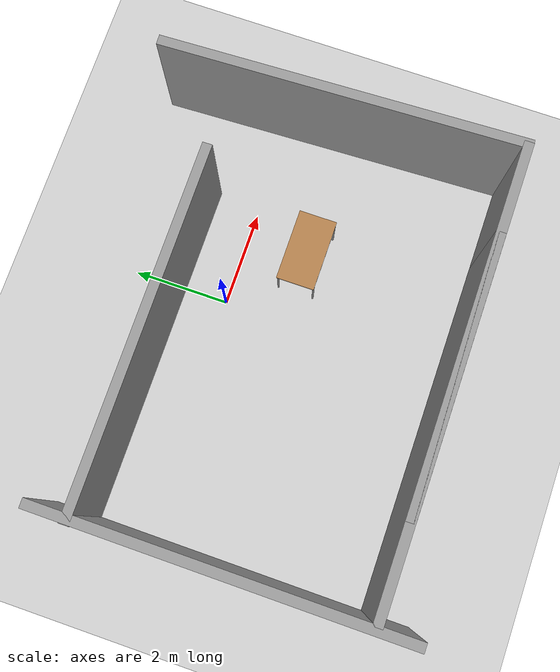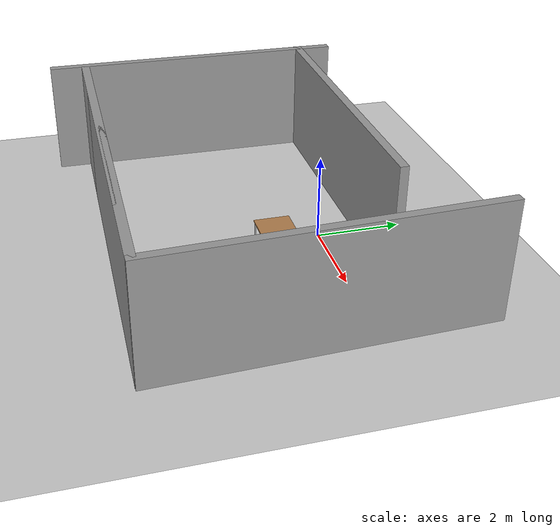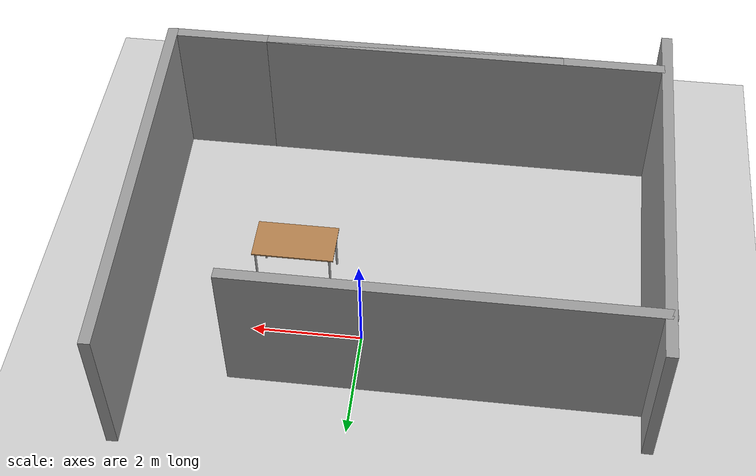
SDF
<sdf version="1.7">
 <world name="custom_world_with_walls">
  <scene><ambient>0.4 0.4 0.4 1</ambient><background>0.7 0.7 0.7 1</background><shadows>1</shadows></scene>
  <light name="sun" type="directional">
   <pose>0 0 10 0 -0 0</pose>
   <diffuse>0.8 0.8 0.8 1</diffuse>
   <specular>0.2 0.2 0.2 1</specular>
   <attenuation>
    <range>1000</range>
    <constant>0.9</constant>
    <linear>0.01</linear>
    <quadratic>0.001</quadratic>
   </attenuation>
   <direction>-0.5 0.1 -0.9</direction>
   <spot><inner_angle>0</inner_angle><outer_angle>0</outer_angle><falloff>0</falloff></spot>
  </light>
  <model name="ground_plane">
   <static>1</static>
   <link name="link">
    <collision name="collision">
     <geometry><plane><normal>0 0 1</normal><size>100 100</size></plane></geometry>
     <surface>
      <contact><collide_bitmask>65535</collide_bitmask></contact>
      <friction><ode><mu>100</mu><mu2>50</mu2></ode></friction>
     </surface>
    </collision>
    <visual name="visual">
     <cast_shadows>0</cast_shadows>
     <geometry><plane><normal>0 0 1</normal><size>100 100</size></plane></geometry>
     <material>
      <script><uri>file://media/materials/scripts/gazebo.material</uri><name>Gazebo/Grey</name></script>
     </material>
    </visual>
   </link>
  </model>
  <physics type="ode">
   <real_time_update_rate>1000</real_time_update_rate>
   <max_step_size>0.001</max_step_size>
   <real_time_factor>1</real_time_factor>
   <ode>
    <solver>
     <type>quick</type>
     <iters>150</iters>
     <precon_iters>0</precon_iters>
     <sor>1.4</sor>
     <use_dynamic_moi_rescaling>1</use_dynamic_moi_rescaling>
    </solver>
    <constraints>
     <cfm>1e-05</cfm>
     <erp>0.2</erp>
     <contact_max_correcting_vel>2000</contact_max_correcting_vel>
     <contact_surface_layer>0.01</contact_surface_layer>
    </constraints>
   </ode>
  </physics>
  <gravity>0 0 -9.8</gravity>
  <magnetic_field>6e-06 2.3e-05 -4.2e-05</magnetic_field>
  <atmosphere type="adiabatic"/>
  <spherical_coordinates>
   <surface_model>EARTH_WGS84</surface_model>
   <latitude_deg>0</latitude_deg>
   <longitude_deg>0</longitude_deg>
   <elevation>0</elevation>
   <heading_deg>0</heading_deg>
  </spherical_coordinates>
  <model name="grey_wall">
   <static>1</static>
   <link name="link">
    <pose>0 0 1.4 0 -0 0</pose>
    <collision name="collision"><geometry><box><size>7.5 0.2 2.8</size></box></geometry></collision>
    <visual name="visual">
     <cast_shadows>0</cast_shadows>
     <geometry><box><size>7.5 0.2 2.8</size></box></geometry>
     <material>
      <script>
       <uri>model://grey_wall/materials/scripts</uri>
       <uri>model://grey_wall/materials/textures</uri>
       <name>vrc/grey_wall</name>
      </script>
     </material>
    </visual>
   </link>
   <pose>-1.50164 1.00297 0 0 -0 0</pose>
  </model>
  <model name="grey_wall_0">
   <static>1</static>
   <link name="link">
    <pose>0 0 1.4 0 -0 0</pose>
    <collision name="collision"><geometry><box><size>7.5 0.2 2.8</size></box></geometry></collision>
    <visual name="visual">
     <cast_shadows>0</cast_shadows>
     <geometry><box><size>7.5 0.2 2.8</size></box></geometry>
     <material>
      <script>
       <uri>model://grey_wall/materials/scripts</uri>
       <uri>model://grey_wall/materials/textures</uri>
       <name>vrc/grey_wall</name>
      </script>
     </material>
    </visual>
   </link>
   <pose>-1.3711 -4.76172 0 0 -0 0</pose>
  </model>
  <model name="grey_wall_1">
   <static>1</static>
   <link name="link">
    <pose>0 0 1.4 0 -0 0</pose>
    <collision name="collision"><geometry><box><size>7.5 0.2 2.8</size></box></geometry></collision>
    <visual name="visual">
     <cast_shadows>0</cast_shadows>
     <geometry><box><size>7.5 0.2 2.8</size></box></geometry>
     <material>
      <script>
       <uri>model://grey_wall/materials/scripts</uri>
       <uri>model://grey_wall/materials/textures</uri>
       <name>vrc/grey_wall</name>
      </script>
     </material>
    </visual>
   </link>
   <pose>0.506715 -4.7625 0 0 -0 0</pose>
  </model>
  <model name="grey_wall_2">
   <static>1</static>
   <link name="link">
    <pose>0 0 1.4 0 -0 0</pose>
    <collision name="collision"><geometry><box><size>7.5 0.2 2.8</size></box></geometry></collision>
    <visual name="visual">
     <cast_shadows>0</cast_shadows>
     <geometry><box><size>7.5 0.2 2.8</size></box></geometry>
     <material>
      <script>
       <uri>model://grey_wall/materials/scripts</uri>
       <uri>model://grey_wall/materials/textures</uri>
       <name>vrc/grey_wall</name>
      </script>
     </material>
    </visual>
   </link>
   <pose>4.08284 -1.11021 0 0 0 -1.5337</pose>
  </model>
  <model name="grey_wall_3">
   <static>1</static>
   <link name="link">
    <pose>0 0 1.4 0 -0 0</pose>
    <collision name="collision"><geometry><box><size>7.5 0.2 2.8</size></box></geometry></collision>
    <visual name="visual">
     <cast_shadows>0</cast_shadows>
     <geometry><box><size>7.5 0.2 2.8</size></box></geometry>
     <material>
      <script>
       <uri>model://grey_wall/materials/scripts</uri>
       <uri>model://grey_wall/materials/textures</uri>
       <name>vrc/grey_wall</name>
      </script>
     </material>
    </visual>
   </link>
   <pose>-5.1555 -1.90069 0 0 0 -1.57591</pose>
  </model>
  <model name="table">
   <static>1</static>
   <link name="link">
    <collision name="surface">
     <pose>0 0 1 0 -0 0</pose>
     <geometry><box><size>1.5 0.8 0.03</size></box></geometry>
     <surface><friction><ode><mu>0.6</mu><mu2>0.6</mu2></ode></friction></surface>
    </collision>
    <visual name="visual1">
     <pose>0 0 1 0 -0 0</pose>
     <geometry><box><size>1.5 0.8 0.03</size></box></geometry>
     <material>
      <script><uri>file://media/materials/scripts/gazebo.material</uri><name>Gazebo/Wood</name></script>
     </material>
    </visual>
    <collision name="front_left_leg">
     <pose>0.68 0.38 0.5 0 -0 0</pose>
     <geometry><cylinder><radius>0.02</radius><length>1</length></cylinder></geometry>
    </collision>
    <visual name="front_left_leg">
     <pose>0.68 0.38 0.5 0 -0 0</pose>
     <geometry><cylinder><radius>0.02</radius><length>1</length></cylinder></geometry>
     <material>
      <script><uri>file://media/materials/scripts/gazebo.material</uri><name>Gazebo/Grey</name></script>
     </material>
    </visual>
    <collision name="front_right_leg">
     <pose>0.68 -0.38 0.5 0 -0 0</pose>
     <geometry><cylinder><radius>0.02</radius><length>1</length></cylinder></geometry>
    </collision>
    <visual name="front_right_leg">
     <pose>0.68 -0.38 0.5 0 -0 0</pose>
     <geometry><cylinder><radius>0.02</radius><length>1</length></cylinder></geometry>
     <material>
      <script><uri>file://media/materials/scripts/gazebo.material</uri><name>Gazebo/Grey</name></script>
     </material>
    </visual>
    <collision name="back_right_leg">
     <pose>-0.68 -0.38 0.5 0 -0 0</pose>
     <geometry><cylinder><radius>0.02</radius><length>1</length></cylinder></geometry>
    </collision>
    <visual name="back_right_leg">
     <pose>-0.68 -0.38 0.5 0 -0 0</pose>
     <geometry><cylinder><radius>0.02</radius><length>1</length></cylinder></geometry>
     <material>
      <script><uri>file://media/materials/scripts/gazebo.material</uri><name>Gazebo/Grey</name></script>
     </material>
    </visual>
    <collision name="back_left_leg">
     <pose>-0.68 0.38 0.5 0 -0 0</pose>
     <geometry><cylinder><radius>0.02</radius><length>1</length></cylinder></geometry>
    </collision>
    <visual name="back_left_leg">
     <pose>-0.68 0.38 0.5 0 -0 0</pose>
     <geometry><cylinder><radius>0.02</radius><length>1</length></cylinder></geometry>
     <material>
      <script><uri>file://media/materials/scripts/gazebo.material</uri><name>Gazebo/Grey</name></script>
     </material>
    </visual>
   </link>
   <pose>1.36999 -1.31441 0 0 -0 0</pose>
  </model>
 </world>
</sdf>
